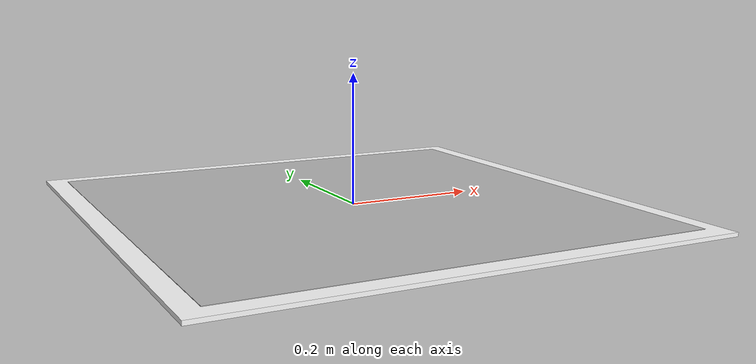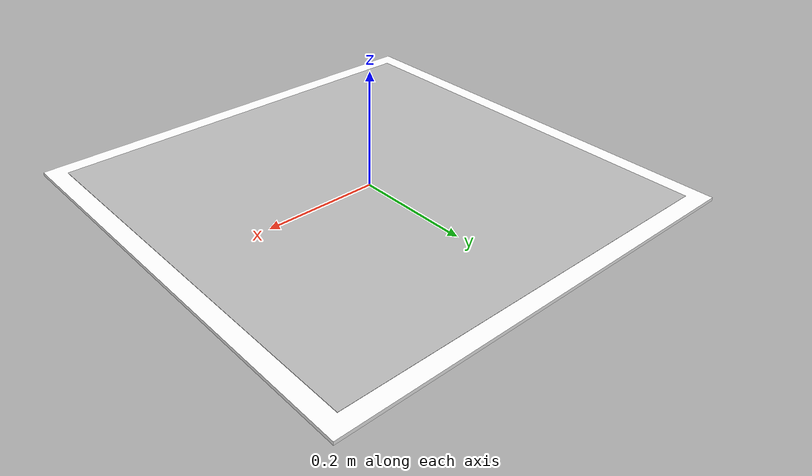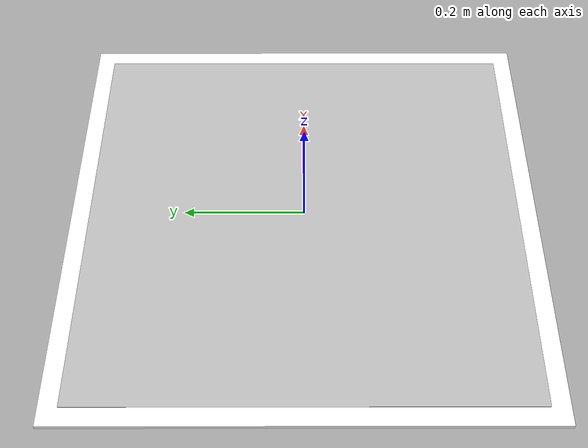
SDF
<?xml version="1.0"?>
<sdf version="1.6">
  <model name="zhirong_qr_marker">
    <static>true</static>
    <link name="marker_link">
      <visual name="white_backing">
        <pose>0 0 -0.003 0 0 0</pose>
        <geometry>
          <box>
            <size>0.78 0.78 0.006</size>
          </box>
        </geometry>
        <material>
          <ambient>1 1 1 1</ambient>
          <diffuse>1 1 1 1</diffuse>
          <specular>0 0 0 1</specular>
        </material>
      </visual>
      <visual name="qr_visual">
        <pose>0 0 0.001 0 0 0</pose>
        <geometry>
          <plane>
            <normal>0 0 1</normal>
            <size>0.72 0.72</size>
          </plane>
        </geometry>
        <material>
          <script>
            <uri>model://zhirong_qr_marker/materials/scripts</uri>
            <uri>model://zhirong_qr_marker/materials/textures</uri>
            <name>Zhirong/NavigationQr</name>
          </script>
        </material>
      </visual>
    </link>
  </model>
</sdf>
